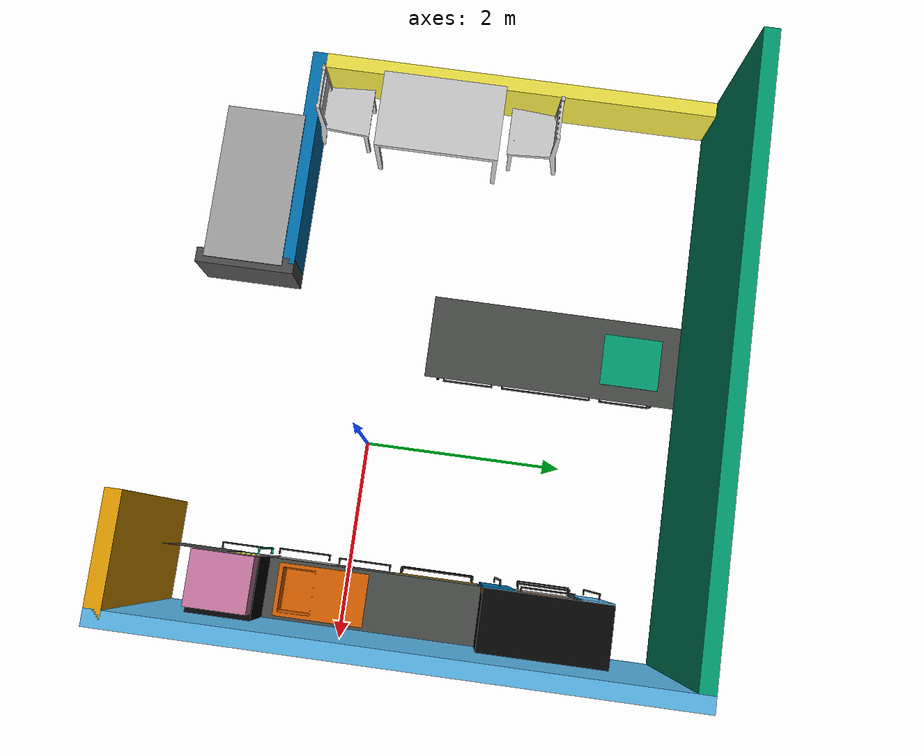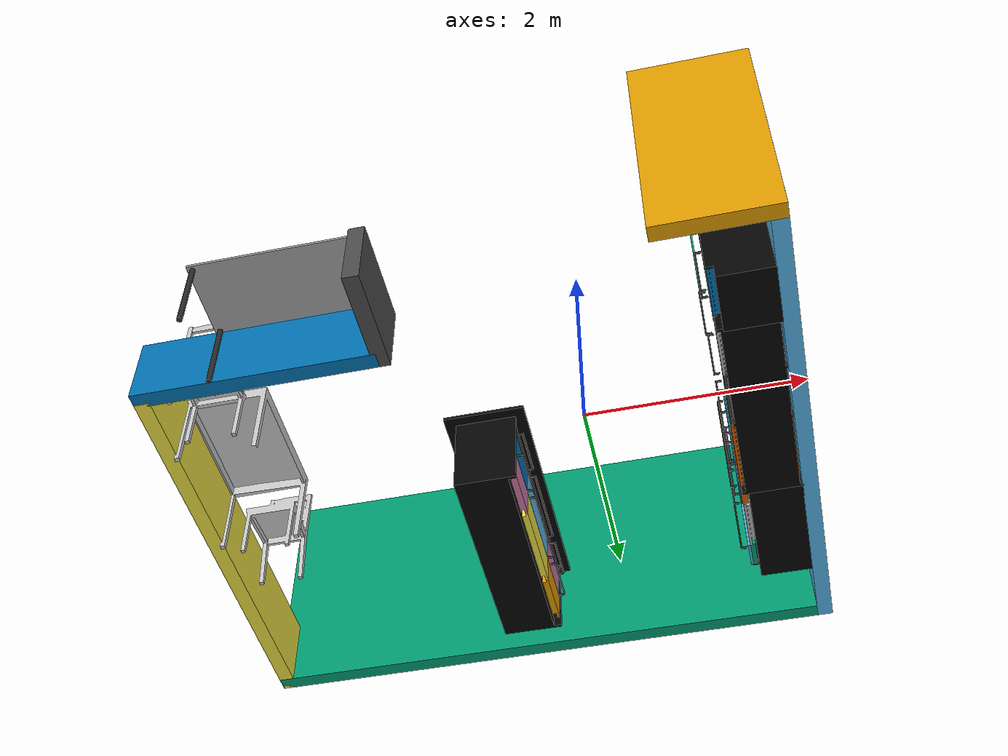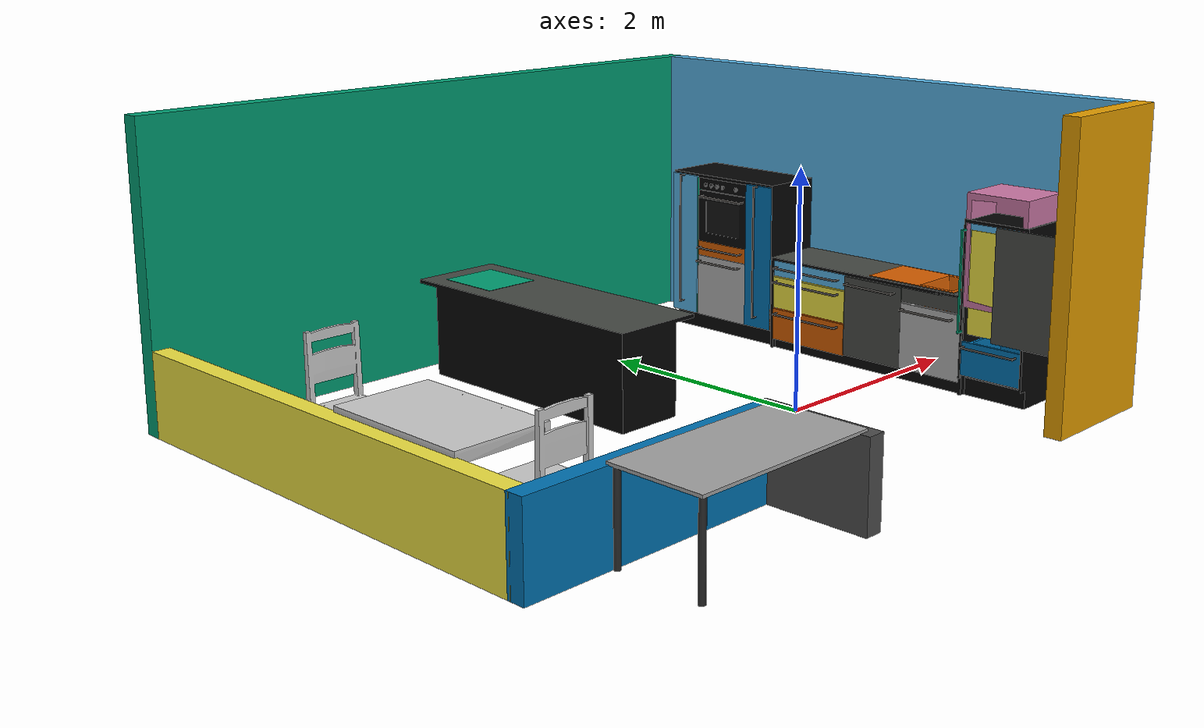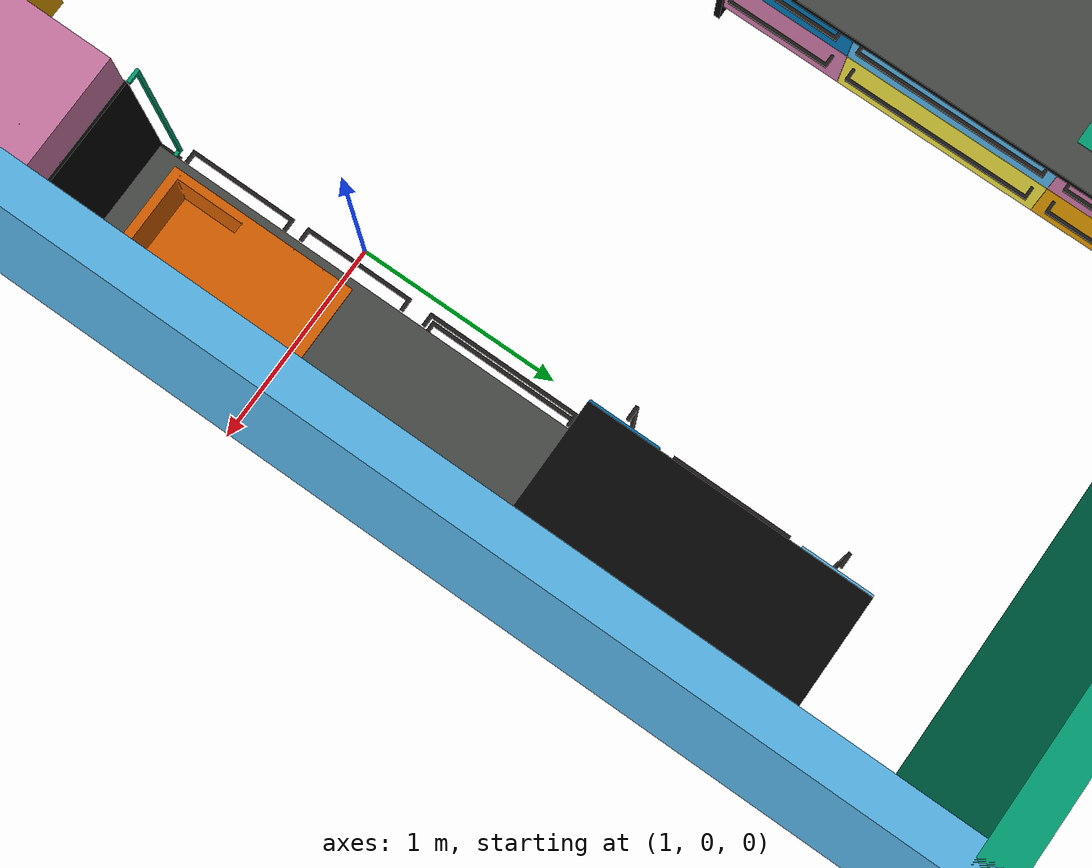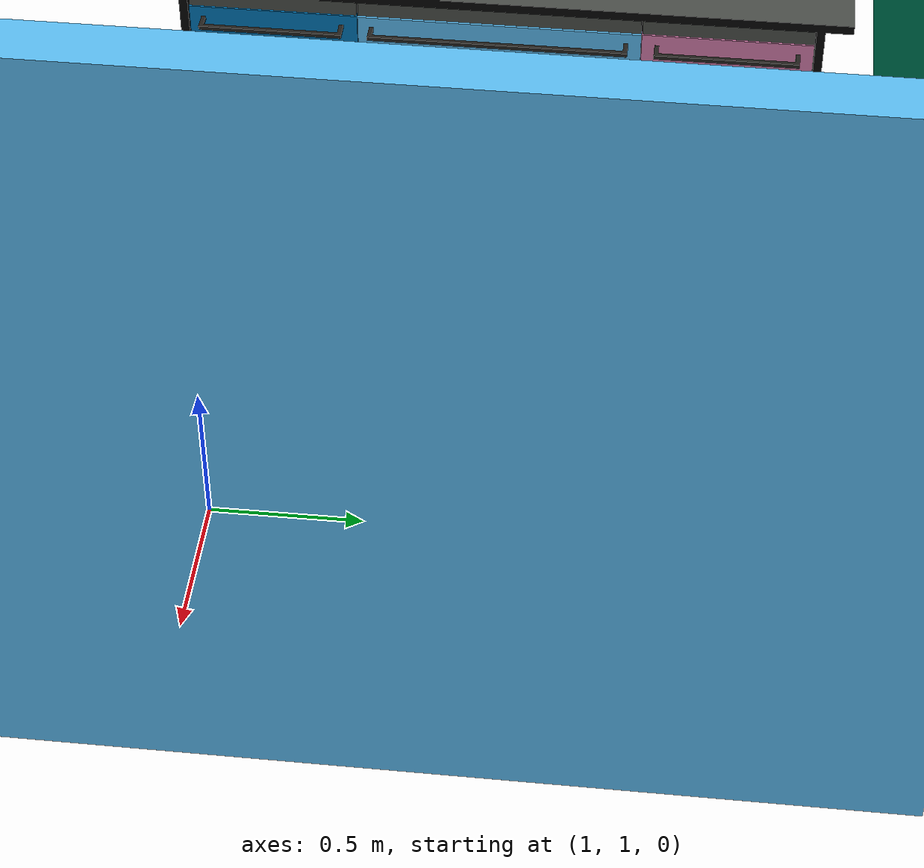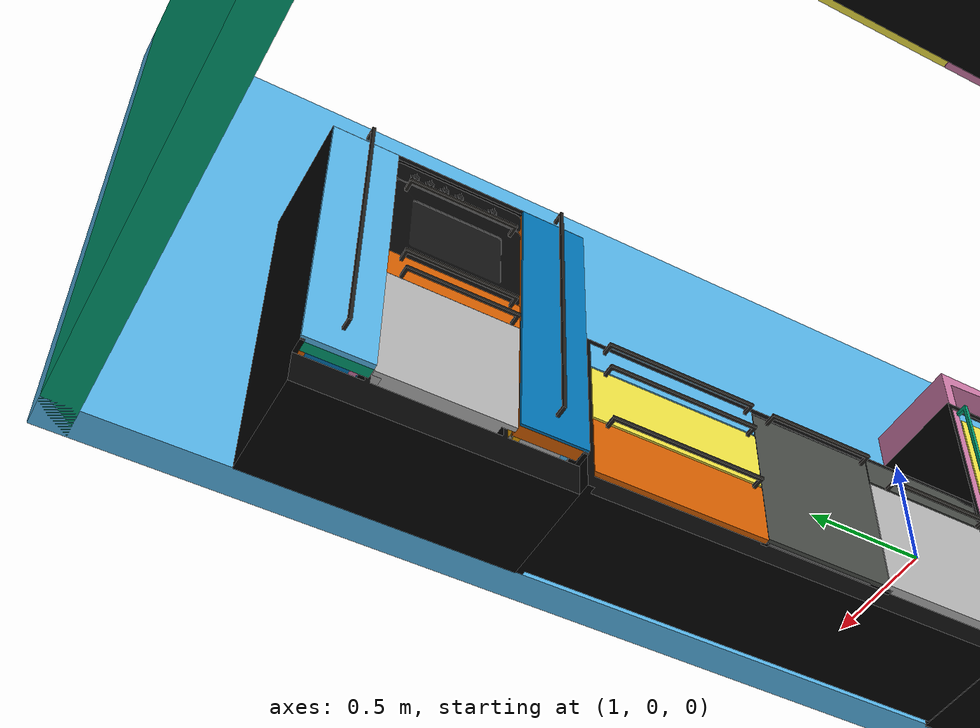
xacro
<?xml version="1.0"?>

<robot name="iai_kitchen" xmlns:xacro="http://ros.org/wiki/xacro">

  <xacro:include filename="$(find iai_kitchen)/urdf_obj/IAI_oven_area.urdf.xacro"/>
  <xacro:include filename="$(find iai_kitchen)/urdf_obj/IAI_kitchen_island.urdf.xacro"/>
  <xacro:include filename="$(find iai_kitchen)/urdf_obj/IAI_sink_area.urdf.xacro"/>
  <xacro:include filename="$(find iai_kitchen)/urdf_obj/IAI_fridge_area.urdf.xacro"/>
  <xacro:include filename="$(find iai_kitchen)/urdf_obj/IAI_tables.urdf.xacro"/>
  <xacro:include filename="$(find iai_kitchen)/urdf_obj/IAI_kitchen_walls.urdf.xacro"/>

  <xacro:property name="pi" value="3.1415926535897931" />
  <xacro:property name="simulated" value="true" />
  <xacro:property name="include_wall_7" value="false"/>
  <xacro:macro name="sphere_inertia" params="radius mass">
    <inertial>
      <origin xyz="0.0 0.0 0.0" rpy="0 0 0"/>
      <mass value="1"/>
      <inertia
          ixx="1" ixy="0.0" ixz="0.0"
          iyy="1" iyz="0.0"
          izz="1"/>
    </inertial>
  </xacro:macro>

  <link name="room_link">
    <xacro:sphere_inertia radius="0" mass="0"/>
  </link>
  <xacro:if value="${simulated}">
    <link name="world"/>
    <joint name="world_room_joint" type="fixed">
      <origin xyz="0.0 0.03 0 " rpy="0 0 0" />
      <parent link="world"/>
      <child link="room_link"/>
    </joint>
  </xacro:if>

  <xacro:iai_sink_area name="sink_area" parent="room_link">
    <origin xyz="1.855 1.3 0" rpy="0 0 ${pi}" />
  </xacro:iai_sink_area>

  <xacro:iai_oven_area name="oven_area" parent="room_link">
    <origin xyz="1.845 2.5 0" rpy="0 0 ${pi}" />
  </xacro:iai_oven_area>

  <xacro:iai_kitchen_island name="kitchen_island" parent="room_link">
    <origin xyz="-1.363 0.59 0" rpy="0 0 0" />
  </xacro:iai_kitchen_island>

  <xacro:iai_fridge_area name="fridge_area" parent="room_link">
    <origin xyz="1.845 -0.73 0" rpy="0 0 ${pi}" />
  </xacro:iai_fridge_area>

  <xacro:iai_table_1 name="table_area" parent="room_link">
    <origin xyz="-2.4 -1.5 0" rpy="0 0 ${pi}" />
  </xacro:iai_table_1>

  <xacro:iai_dining_area name="dining_area" parent="room_link">
    <origin xyz="-3.38 0.28 0" rpy="0 0 ${pi / 2}" />
  </xacro:iai_dining_area>

  <xacro:iai_kitchen_wall_robohow parent="room_link">
    <origin xyz="-0.96 0.65 0" rpy="0.0 0.0 0.0" />
  </xacro:iai_kitchen_wall_robohow>

  <gazebo>
    <static>false</static>
  </gazebo>

</robot>

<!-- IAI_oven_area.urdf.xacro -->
<robot name="iai_oven_area" xmlns:xacro="http://ros.org/wiki/xacro">

  <xacro:property name="pi" value="3.1415926535897931" />

  <!--- FIXME THIS should NOT be here -->
  <xacro:include filename="$(find iai_kitchen)/urdf_obj/IAI_drawers.urdf.xacro"/>
  <xacro:include filename="$(find iai_kitchen)/urdf_obj/IAI_oven.urdf.xacro"/>

  <xacro:macro name="iai_oven_area" params="parent name *origin">
  <link name="${name}_area_footprint">
    <xacro:sphere_inertia radius="0" mass="0"/>
  </link>

  <link name="${name}_area">
    <xacro:sphere_inertia radius="0" mass="0"/>
    <visual>
        <origin xyz="0 0 0" rpy="0 0 0" />
        <geometry>
          <mesh filename="package://iai_kitchen/meshes/racks/OvenArea.dae"/>
        </geometry>
      </visual>
    <collision>
        <origin xyz="0 0 0" rpy="0 0 0" />
        <geometry>
          <mesh filename="package://iai_kitchen/meshes/racks/OvenArea.obj"/>
        </geometry>
      </collision>
  </link>

  <joint name="${name}_footprint_joint" type="fixed">
      <xacro:insert_block name="origin" />
    <child link="${name}_area_footprint"/>
    <parent link="${parent}"/>
  </joint>

  <joint name="${name}_main_joint" type="fixed">
    <origin xyz="0.29 0.6 0.755" rpy="0 0 0" />
    <parent link="${name}_area_footprint"/>
    <child link="${name}_area"/>
  </joint>

  <xacro:iai_oven name="${name}_oven" parent="${name}_area">
    <origin rpy="0 0 0" xyz="0.0 0.0 0.415"/>
  </xacro:iai_oven>

  <xacro:iai_drawer_60_14 name="${name}_area_middle_upper_drawer" parent="${name}_area">
    <origin rpy="0 0 0" xyz="0.0 -0. 0.045 "/>
  </xacro:iai_drawer_60_14>

  <xacro:iai_drawer_60_58 name="${name}_area_middle_lower_drawer" parent="${name}_area">
    <origin rpy="0 0 0" xyz="0.0 -0. -0.315 "/>
  </xacro:iai_drawer_60_58>

  <xacro:iai_vdrawer name="${name}_area_left_drawer" parent="${name}_area">
    <origin rpy="0 0 0" xyz="0.29 -0.45 0.07 "/>
  </xacro:iai_vdrawer>

  <xacro:iai_vdrawer name="${name}_area_right_drawer" parent="${name}_area">
    <origin rpy="0 0 0" xyz="0.29 0.45 0.07"/>
  </xacro:iai_vdrawer>

  </xacro:macro>

</robot>

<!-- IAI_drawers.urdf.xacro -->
<robot name="iai_drawers" xmlns:xacro="http://ros.org/wiki/xacro">

  <xacro:property name="pi" value="3.1415926535897931" />

  <xacro:macro name="iai_drawer_60_14" params="name parent *origin">
    <xacro:iai_drawer_14 name="${name}" parent="${parent}" width="60">
      <xacro:insert_block name="origin" />
    </xacro:iai_drawer_14>
  </xacro:macro>

  <xacro:macro name="iai_drawer_80_14" params="name parent *origin">
    <xacro:iai_drawer_14 name="${name}" parent="${parent}" width="80">
      <xacro:insert_block name="origin" />
    </xacro:iai_drawer_14>
  </xacro:macro>

  <xacro:macro name="iai_drawer_60_29" params="name parent *origin">
    <xacro:iai_drawer_29 name="${name}" parent="${parent}" width="60">
      <xacro:insert_block name="origin" />
    </xacro:iai_drawer_29>
  </xacro:macro>

  <xacro:macro name="iai_drawer_80_29" params="name parent *origin">
    <xacro:iai_drawer_29 name="${name}" parent="${parent}" width="80">
      <xacro:insert_block name="origin" />
    </xacro:iai_drawer_29>
  </xacro:macro>

  <xacro:macro name="iai_drawer_100_29" params="name parent *origin">
    <xacro:iai_drawer_29 name="${name}" parent="${parent}" width="100">
      <xacro:insert_block name="origin" />
    </xacro:iai_drawer_29>
  </xacro:macro>

  <xacro:macro name="iai_drawer_60_58" params="name parent *origin">
    <xacro:iai_drawer_58 name="${name}" parent="${parent}" width="60">
      <xacro:insert_block name="origin" />
    </xacro:iai_drawer_58>
  </xacro:macro>

  <xacro:macro name="iai_drawer_58" params="name parent width *origin">

    <xacro:iai_generic_drawer name="${name}" parent="${parent}" width="${width}" height="58">
      <xacro:insert_block name="origin" />
      <origin xyz="0.37 0 0.25" rpy="0 0 0" />
    </xacro:iai_generic_drawer>
  </xacro:macro>

  <xacro:property name="board_x" value="0.49"/>
  <xacro:property name="board_y" value="0.25"/>
  <xacro:property name="board_z" value="0.036"/>
  <xacro:property name="barrier_z" value="0.1"/>
  <xacro:macro name="iai_vdrawer_board" params="name parent joint_origin_z">
    <link name="${parent}_board_${name}_link">
      <sphere_inertia radius="0" mass="0"/>
      <visual>
        <origin rpy="0 0 0" xyz="0 0 0"/>
        <geometry>
          <box size="${board_x} ${board_y} ${board_z}"/>
        </geometry>
      </visual>
      <collision>
        <origin rpy="0 0 0" xyz="0 0 0"/>
        <geometry>
          <box size="${board_x} ${board_y} ${board_z}"/>
        </geometry>
      </collision>
    </link>

    <joint name="${parent}_board_${name}_joint" type="fixed">
      <origin xyz="${-board_y} 0 ${joint_origin_z}"/>
      <parent link="${parent}_main"/>
      <child link="${parent}_board_${name}_link"/>
    </joint>

    <link name="${parent}_barrier_${name}_right_link">
      <sphere_inertia radius="0" mass="0"/>
      <visual>
        <origin rpy="0 0 0" xyz="0 0 0"/>
        <geometry>
          <box size="${board_x} ${board_z} ${barrier_z}"/>
        </geometry>
      </visual>
      <collision>
        <origin rpy="0 0 0" xyz="0 0 0"/>
        <geometry>
          <box size="${board_x} ${board_z} ${barrier_z}"/>
        </geometry>
      </collision>
    </link>

    <joint name="${parent}_barrier_${name}_right_joint" type="fixed">
      <origin xyz="${-board_y} ${-board_y / 2 + board_z / 2} ${joint_origin_z + barrier_z/2 - board_z/2}"/>
      <parent link="${parent}_main"/>
      <child link="${parent}_barrier_${name}_right_link"/>
    </joint>

    <link name="${parent}_barrier_${name}_left_link">
      <sphere_inertia radius="0" mass="0"/>
      <visual>
        <origin rpy="0 0 0" xyz="0 0 0"/>
        <geometry>
          <box size="${board_x} ${board_z} ${barrier_z}"/>
        </geometry>
      </visual>
      <collision>
        <origin rpy="0 0 0" xyz="0 0 0"/>
        <geometry>
          <box size="${board_x} ${board_z} ${barrier_z}"/>
        </geometry>
      </collision>
    </link>

    <joint name="${parent}_barrier_${name}_left_joint" type="fixed">
      <origin xyz="${-board_y} ${board_y / 2 - board_z / 2} ${joint_origin_z + barrier_z/2 - board_z/2}"/>
      <parent link="${parent}_main"/>
      <child link="${parent}_barrier_${name}_left_link"/>
    </joint>

    <link name="${parent}_barrier_${name}_back_link">
      <sphere_inertia radius="0" mass="0"/>
      <visual>
        <origin rpy="0 0 0" xyz="0 0 0"/>
        <geometry>
          <box size="${board_z} ${board_y} ${barrier_z}"/>
        </geometry>
      </visual>
      <collision>
        <origin rpy="0 0 0" xyz="0 0 0"/>
        <geometry>
          <box size="${board_z} ${board_y} ${barrier_z}"/>
        </geometry>
      </collision>
    </link>

    <joint name="${parent}_barrier_${name}_back_joint" type="fixed">
      <origin xyz="${-board_x / 2 + board_z / 2 - board_y} 0 ${joint_origin_z + barrier_z/2 - board_z/2}"/>
      <parent link="${parent}_main"/>
      <child link="${parent}_barrier_${name}_back_link"/>
    </joint>
  </xacro:macro>

  <xacro:macro name="iai_vdrawer" params="name parent *origin">
    <joint name="${name}_main_joint" type="prismatic">
      <xacro:insert_block name="origin"/>
      <parent link="${parent}"/>
      <child link="${name}_main"/>
      <axis xyz="1. 0. 0.0"/>
      <limit effort="300" lower="0" upper="0.48" velocity="10"/>
    </joint>

    <link name="${name}_main">
      <sphere_inertia radius="0" mass="0"/>
      <visual>
        <origin rpy="0 0 0" xyz="0 0 0"/>
        <geometry>
          <box size="0.025 0.3 1.33"/>
        </geometry>
      </visual>
      <collision>
        <origin rpy="0 0 0" xyz="0 0 0"/>
        <geometry>
          <box size="0.025 0.3 1.33"/>
        </geometry>
      </collision>
    </link>

    <joint name="${name}_main_padding_joint" type="fixed">
      <parent link="${name}_main"/>
      <child link="${name}_main_padding"/>
      <origin rpy="0 0 0" xyz="-0.03 0.0 0.0"/>
    </joint>
    <link name="${name}_main_padding">
      <sphere_inertia radius="0" mass="0"/>
      <visual>
        <origin rpy="0 0 0" xyz="0 0 0"/>
        <geometry>
          <box size="0.06 0.3 1.33"/>
        </geometry>
      </visual>
      <collision>
        <origin rpy="0 0 0" xyz="0 0 0"/>
        <geometry>
          <box size="0.06 0.3 1.33"/>
        </geometry>
      </collision>
    </link>

    <joint name="${name}_handle_joint" type="fixed">
      <origin rpy="${-0.5*pi} 0 0" xyz="0.08 0.0 0.05"/>
      <parent link="${name}_main" />
      <child link="${name}_handle" />
    </joint>

    <link name="${name}_handle">
      <sphere_inertia radius="0" mass="0"/>
      <visual>
        <origin xyz="0 0 0" rpy="${0.5*pi} 0 0" />
        <geometry>
          <mesh filename="package://iai_kitchen/meshes/handles/VHandle130.obj"/>
        </geometry>
      </visual>
      <collision>
        <origin xyz="0 0 0" rpy="${0.5*pi} 0 0" />
        <geometry>
          <mesh filename="package://iai_kitchen/meshes/handles/VHandle130.obj"/>
        </geometry>
      </collision>
    </link>

    <xacro:iai_vdrawer_board name="0" parent="${name}" joint_origin_z="-0.6"/>
    <xacro:iai_vdrawer_board name="1" parent="${name}" joint_origin_z="-0.28"/>
    <xacro:iai_vdrawer_board name="2" parent="${name}" joint_origin_z="0.05"/>
    <xacro:iai_vdrawer_board name="3" parent="${name}" joint_origin_z="0.38"/>
  </xacro:macro>

  <xacro:macro name="iai_drawer_29" params="name parent width *origin">

    <xacro:iai_generic_drawer name="${name}" parent="${parent}" width="${width}" height="29">
      <xacro:insert_block name="origin" />
      <origin xyz="0.3525 0 0.11" rpy="0 0 0" />
    </xacro:iai_generic_drawer>
  </xacro:macro>

  <xacro:macro name="iai_drawer_14" params="name parent width *origin">

    <xacro:iai_generic_drawer name="${name}" parent="${parent}" width="${width}" height="14">
      <xacro:insert_block name="origin" />
      <origin xyz="0.3525 0 0.0175" rpy="0 0 0" />
    </xacro:iai_generic_drawer>
  </xacro:macro>

  <xacro:macro name="iai_generic_drawer" params="name parent width height *origin *handle_origin">
    <link name="${name}_main">
      <sphere_inertia radius="0" mass="0"/>
      <visual>
        <origin xyz="0 0 0" rpy="0 0 0" />
        <geometry>
          <mesh filename="package://iai_kitchen/meshes/drawers/Drawer_${width}_${height}.obj"/>
        </geometry>
      </visual>
      <collision>
        <origin xyz="0 0 0" rpy="0 0 0" />
        <geometry>
          <mesh filename="package://iai_kitchen/meshes/drawers/Drawer_${width}_${height}.obj"/>
        </geometry>
      </collision>
    </link>

    <link name="${name}_handle">
      <sphere_inertia radius="0" mass="0"/>
      <visual>
        <origin xyz="0 0 0" rpy="0 0 0" />
        <geometry>
          <mesh filename="package://iai_kitchen/meshes/handles/Handle${width}.obj"/>
        </geometry>
      </visual>
      <collision>
        <origin xyz="0 0 0" rpy="0 0 0" />
        <geometry>
          <mesh filename="package://iai_kitchen/meshes/handles/Handle${width}.obj"/>
        </geometry>
      </collision>
    </link>

    <joint name="${name}_main_joint" type="prismatic">
      <xacro:insert_block name="origin" />
      <parent link="${parent}"/>
      <child link="${name}_main"/>
      <axis xyz="1. 0. 0.0"/>
      <limit effort="300" lower="0" upper="0.48" velocity="10"/>
    </joint>

    <joint name="${name}_handle_joint" type="fixed">
      <xacro:insert_block name="handle_origin"/>
      <parent link="${name}_main"/>
      <child link="${name}_handle"/>
      <axis xyz="0 0 1"/>
      <limit lower="0" upper="${0.5*pi}" effort="300" velocity="10"/>
    </joint>
  </xacro:macro>

  <xacro:macro name="iai_generic_panel" params="name parent width *origin">
    <link name="${name}">
      <sphere_inertia radius="0" mass="0"/>
      <visual>
        <origin xyz="0 0 0" rpy="0 0 0" />
        <geometry>
          <mesh filename="package://iai_kitchen/meshes/drawers/Panel_${width}.obj"/>
        </geometry>
      </visual>
      <collision>
        <origin xyz="0 0 0" rpy="0 0 0" />
        <geometry>
          <mesh filename="package://iai_kitchen/meshes/drawers/Panel_${width}.obj"/>
        </geometry>
      </collision>
    </link>

    <joint name="${name}_joint" type="fixed">
      <xacro:insert_block name="origin"/>
      <parent link="${parent}"/>
      <child link="${name}"/>
    </joint>
  </xacro:macro>

  <!--- FIXME THIS should NOT be here -->
</robot>

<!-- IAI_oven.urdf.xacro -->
<robot name="iai_oven" xmlns:xacro="http://ros.org/wiki/xacro">

  <xacro:property name="pi" value="3.1415926535897931" />

  <xacro:macro name="iai_oven" params="name parent *origin">
    <!-- LINKS -->

    <link name="${name}_main">

      <xacro:sphere_inertia radius="0" mass="0"/>
      <visual>
        <origin xyz="0 0 0" rpy="0 0 0" />
        <geometry>
          <mesh filename="package://iai_kitchen/meshes/oven/OvenMain.dae"/>
        </geometry>
      </visual>
      <collision>
        <origin xyz="0 0 0" rpy="0 0 0" />
        <geometry>
          <mesh filename="package://iai_kitchen/meshes/oven/OvenMain.obj"/>
        </geometry>
      </collision>
    </link>

    <link name="${name}_door">

      <xacro:sphere_inertia radius="0" mass="0"/>
      <visual>
        <origin xyz="0 0 0" rpy="${0.5*pi} 0 0" />
        <geometry>
          <mesh filename="package://iai_kitchen/meshes/oven/OvenDoor.dae"/>
        </geometry>
      </visual>
      <collision>
        <origin xyz="0 0 0" rpy="${0.5*pi} 0 0" />
        <geometry>
          <mesh filename="package://iai_kitchen/meshes/oven/OvenDoor.obj"/>
        </geometry>
      </collision>
    </link>

    <link name="${name}_door_handle">

      <xacro:sphere_inertia radius="0" mass="0"/>
      <visual>
        <origin xyz="0 0 0" rpy="0 0 0" />
        <geometry>
          <mesh filename="package://iai_kitchen/meshes/handles/Handle60.dae"/>
        </geometry>
      </visual>
      <collision>
        <origin xyz="0 0 0" rpy="0 0 0" />
        <geometry>
          <mesh filename="package://iai_kitchen/meshes/handles/Handle60.obj"/>
        </geometry>
      </collision>
    </link>

    <link name="${name}_panel">

      <xacro:sphere_inertia radius="0" mass="0"/>
      <visual>
        <origin xyz="0 0 0" rpy="0 0 0" />
        <geometry>
          <mesh filename="package://iai_kitchen/meshes/oven/OvenPanel.dae"/>
        </geometry>
      </visual>
      <collision>
        <origin xyz="0 0 0" rpy="0 0 0" />
        <geometry>
          <mesh filename="package://iai_kitchen/meshes/oven/OvenPanel.obj"/>
        </geometry>
      </collision>
    </link>

    <!-- JOINTS -->

    <joint name="${name}_main_joint" type="fixed">
      <xacro:insert_block name="origin" />
      <parent link="${parent}"/>
      <child link="${name}_main"/>
    </joint>
    <xacro:if value="${simulated}">
      <joint name="${name}_door_joint" type="revolute">
        <origin xyz="0.2737 0. -0.2614" rpy="${-0.5*pi} 0 0" />
        <parent link="${name}_main"/>
        <child link="${name}_door"/>
        <axis xyz="0 0 1"/>
        <!-- FIXME make the closed position stable -->
        <limit lower="0" upper="${0.5*pi}" effort="0.03" velocity="10"/>

        <dynamics damping="100.1"/>
      </joint>
      <gazebo reference="${name}_door_joint">
        <kp>1000000000</kp>
        <kd>1000000000</kd>
      </gazebo>
    </xacro:if>
    <xacro:unless value="${simulated}">
      <joint name="${name}_door_joint" type="revolute">
        <origin xyz="0.2737 0. -0.2614" rpy="${-0.5*pi} 0 0" />
        <parent link="${name}_main"/>
        <child link="${name}_door"/>
        <axis xyz="0 0 1"/>

        <limit lower="0" upper="${0.5*pi}" effort="300" velocity="10"/>

      </joint>

    </xacro:unless>
    <joint name="${name}_door_handle_joint" type="fixed">
      <origin xyz="0.05876 -0.39803 0." rpy="${-0.5*pi} 0 0" />
      <parent link="${name}_door"/>
      <child link="${name}_door_handle"/>
      <axis xyz="0 0 1"/>
      <limit lower="0" upper="${0.5*pi}" effort="300" velocity="10"/>
    </joint>

    <joint name="${name}_panel_joint" type="fixed">
      <origin xyz="0.27 0 0.2449" rpy="0 0 0" />
      <parent link="${name}_main"/>
      <child link="${name}_panel"/>
    </joint>

    <!--KNOBS -->

    <xacro:iai_oven_knob name="${name}_knob_stove_2" parent="${name}_panel" xyz="0 -0.14 0"/>
    <xacro:iai_oven_knob name="${name}_knob_stove_1" parent="${name}_panel" xyz="0 -0.21 0"/>
    <xacro:iai_oven_knob name="${name}_knob_stove_3" parent="${name}_panel" xyz="0 -0.07 0"/>
    <xacro:iai_oven_knob name="${name}_knob_stove_4" parent="${name}_panel" xyz="0 -0.0 0"/>
    <xacro:iai_oven_knob name="${name}_knob_oven" parent="${name}_panel" xyz="0 0.16 0"/>

  </xacro:macro>

  <xacro:macro name="iai_oven_knob" params="name parent xyz">
    <link name="${name}">

      <xacro:sphere_inertia radius="0" mass="0"/>
      <visual>
        <origin xyz="0 0 0" rpy="0 ${0.5 * pi} 0" />
        <geometry>
          <mesh filename="package://iai_kitchen/meshes/oven/Knob.dae"/>
        </geometry>
      </visual>
      <collision>
        <origin xyz="0 0 0" rpy="0 ${0.5 * pi} 0" />
        <geometry>
          <mesh filename="package://iai_kitchen/meshes/oven/Knob.obj"/>
        </geometry>
      </collision>
    </link>

    <joint name="${name}_joint" type="revolute">
      <origin xyz="${xyz}" rpy="0 ${-0.5 * pi} 0" />
      <parent link="${parent}"/>
      <child link="${name}"/>
      <axis xyz="0 0 1"/>
      <limit lower="0" upper="${pi}" effort="300" velocity="10"/>
    </joint>

  </xacro:macro>

  <!--- FIXME THIS should NOT be here -->
</robot>

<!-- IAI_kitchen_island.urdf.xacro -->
<robot name="iai_kitchen_island" xmlns:xacro="http://ros.org/wiki/xacro">

  <xacro:property name="pi" value="3.1415926535897931" />

  <!--- FIXME THIS should NOT be here -->
  <xacro:include filename="$(find iai_kitchen)/urdf_obj/IAI_drawers.urdf.xacro"/>

  <xacro:macro name="iai_kitchen_island" params="parent name *origin">

    <link name="${name}_footprint">
      <xacro:sphere_inertia radius="0" mass="0"/>
    </link>
    <link name="${name}">
      <xacro:sphere_inertia radius="0" mass="0"/>
      <visual>
        <origin xyz="0 0 0" rpy="0 0 0" />
        <geometry>
          <mesh filename="package://iai_kitchen/meshes/racks/IslandArea.dae"/>
        </geometry>
      </visual>
      <collision>
        <origin xyz="0 0 0" rpy="0 0 0" />
        <geometry>
          <mesh filename="package://iai_kitchen/meshes/racks/IslandArea.obj"/>
        </geometry>
      </collision>
    </link>

    <joint name="${name}_footprint_joint" type="fixed">
        <xacro:insert_block name="origin" />
      <child link="${name}_footprint"/>
      <parent link="${parent}"/>
    </joint>

    <joint name="${name}_joint" type="fixed">
      <origin xyz="0.2975 1.1292 0.421" rpy="0 0 0" />
      <parent link="${name}_footprint"/>
      <child link="${name}"/>
    </joint>

    <link name="${name}_surface">
      <xacro:sphere_inertia radius="0" mass="0"/>
      <collision>
          <origin xyz="0 0 0" rpy="0 0 0" />
          <geometry>
            <box size="0.8 2.45 0.02"/>
          </geometry>
        </collision>
    </link>

    <joint name="${name}_surface_joint" type="fixed">
      <origin xyz="0.0 0. 0.42" rpy="0 0 0" />
      <parent link="${name}"/>
      <child link="${name}_surface"/>
    </joint>

    <link name="${name}_stove">
      <xacro:sphere_inertia radius="0" mass="0"/>
      <visual>
          <origin xyz="0 0 0" rpy="0 0 0" />
          <geometry>
            <mesh filename="package://iai_kitchen/meshes/misc/Stove.dae"/>
          </geometry>
        </visual>
        <collision>
          <origin xyz="0 0 0" rpy="0 0 0" />
          <geometry>
            <mesh filename="package://iai_kitchen/meshes/misc/Stove.obj"/>
          </geometry>
        </collision>
    </link>

    <joint name="${name}_stove_joint" type="fixed">
      <origin xyz="0.0 0.7658 0.4315" rpy="0 0 0" />
      <parent link="${name}"/>
      <child link="${name}_stove"/>
    </joint>

    <xacro:iai_generic_panel name="${name}_left_panel" parent="${name}" width="60">
      <origin rpy="0 0 0" xyz="0.2725 -0.8 0.329 "/>
    </xacro:iai_generic_panel>
    <xacro:iai_drawer_60_29 name="${name}_left_upper_drawer" parent="${name}">
      <origin rpy="0 0 0" xyz="0.0025 -0.8 0.114 "/>
    </xacro:iai_drawer_60_29>
    <xacro:iai_drawer_60_29 name="${name}_left_lower_drawer" parent="${name}">
      <origin rpy="0 0 0" xyz="0.0025 -0.8 -0.176 "/>
    </xacro:iai_drawer_60_29>

    <xacro:iai_generic_panel name="${name}_middle_panel" parent="${name}" width="100">
      <origin rpy="0 0 0" xyz="0.2725 0 0.329 "/>
    </xacro:iai_generic_panel>
    <xacro:iai_drawer_100_29 name="${name}_middle_upper_drawer" parent="${name}">
      <origin rpy="0 0 0" xyz="0.0025 0 0.114 "/>
    </xacro:iai_drawer_100_29>
    <xacro:iai_drawer_100_29 name="${name}_middle_lower_drawer" parent="${name}">
      <origin rpy="0 0 0" xyz="0.0025 0 -0.176 "/>
    </xacro:iai_drawer_100_29>

    <xacro:iai_generic_panel name="${name}_right_panel" parent="${name}" width="60">
      <origin rpy="0 0 0" xyz="0.2725 0.8 0.329 "/>
    </xacro:iai_generic_panel>
    <xacro:iai_drawer_60_29 name="${name}_right_upper_drawer" parent="${name}">
      <origin rpy="0 0 0" xyz="0.0025 0.8 0.114 "/>
    </xacro:iai_drawer_60_29>
    <xacro:iai_drawer_60_29 name="${name}_right_lower_drawer" parent="${name}">
      <origin rpy="0 0 0" xyz="0.0025 0.8 -0.176 "/>
    </xacro:iai_drawer_60_29>
  </xacro:macro>
</robot>

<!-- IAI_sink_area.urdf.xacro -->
<robot name="iai_sink_area" xmlns:xacro="http://ros.org/wiki/xacro">

  <xacro:property name="pi" value="3.1415926535897931" />

  <!--- FIXME THIS should NOT be here -->
  <xacro:include filename="$(find iai_kitchen)/urdf_obj/IAI_drawers.urdf.xacro"/>
  <xacro:include filename="$(find iai_kitchen)/urdf_obj/IAI_dish_washer.urdf.xacro"/>

  <xacro:macro name="iai_sink_area" params="parent name *origin">
  <link name="${name}_footprint">
    <xacro:sphere_inertia radius="0" mass="0"/>
  </link>

  <link name="${name}">
    <xacro:sphere_inertia radius="0" mass="0"/>
    <visual>
        <origin xyz="0 0 0" rpy="0 0 0" />
        <geometry>
          <mesh filename="package://iai_kitchen/meshes/racks/SinkArea.dae"/>
        </geometry>
      </visual>
    <collision>
        <origin xyz="0 0 0" rpy="0 0 0" />
        <geometry>
          <mesh filename="package://iai_kitchen/meshes/racks/SinkArea.obj"/>
        </geometry>
      </collision>
  </link>

  <joint name="${name}_footprint_joint" type="fixed">
      <xacro:insert_block name="origin" />
    <child link="${name}_footprint"/>
    <parent link="${parent}"/>
  </joint>

  <joint name="${name}_main_joint" type="fixed">
    <origin xyz="0.29 1.03 0.41" rpy="0 0 0" />
    <parent link="${name}_footprint"/>
    <child link="${name}"/>
  </joint>

  <link name="${name}_surface">
    <xacro:sphere_inertia radius="0" mass="0"/>
    <collision>
      <origin xyz="0 -0.225 0" rpy="0 0 0" />
      <geometry>
        <box size="0.575 1.6 0.02"/>
      </geometry>
    </collision>
  </link>

 <joint name="${name}_surface_joint" type="fixed">
    <origin xyz="0.0 0. 0.43" rpy="0 0 0" />
    <parent link="${name}"/>
    <child link="${name}_surface"/>
 </joint>

  <link name="${name}_sink">
    <xacro:sphere_inertia radius="0" mass="0"/>
    <visual>
      <origin xyz="0 0 0" rpy="0 0 0" />
      <geometry>
        <mesh filename="package://iai_kitchen/meshes/misc/Sink.dae"/>
      </geometry>
    </visual>
    <collision>
      <origin xyz="0 0 0" rpy="0 0 0" />
      <geometry>
        <mesh filename="package://iai_kitchen/meshes/misc/Sink.obj"/>
      </geometry>
    </collision>
  </link>

  <joint name="${name}_sink_joint" type="fixed">
    <origin xyz="0.005 0.47 0.4414" rpy="0 0 0" />
    <parent link="${name}"/>
    <child link="${name}_sink"/>
  </joint>

  <xacro:iai_generic_panel name="${name}_right_panel" parent="${name}" width="60">
    <origin rpy="0 0 0" xyz="0.28 0.7 0.355 "/>
  </xacro:iai_generic_panel>
  <xacro:iai_drawer_60_58 name="${name}_trash_drawer" parent="${name}">
    <origin rpy="0 0 0" xyz="0.01 0.7 -0.015 "/>
  </xacro:iai_drawer_60_58>
  <xacro:iai_drawer_80_14 name="${name}_left_upper_drawer" parent="${name}">
    <origin rpy="0 0 0" xyz="0.01 -0.6 0.345 "/>
  </xacro:iai_drawer_80_14>
  <xacro:iai_drawer_80_29 name="${name}_left_middle_drawer" parent="${name}">
    <origin rpy="0 0 0" xyz="0.01 -0.6 0.12 "/>
  </xacro:iai_drawer_80_29>
  <xacro:iai_drawer_80_29 name="${name}_left_bottom_drawer" parent="${name}">
    <origin rpy="0 0 0" xyz="0.01 -0.6 -0.18" />
  </xacro:iai_drawer_80_29>
  <xacro:iai_dish_washer name="${name}_dish_washer" parent="${name}">
    <origin rpy="0 0 0" xyz="0.01 0.1 0.06" />
  </xacro:iai_dish_washer>
  </xacro:macro>

</robot>

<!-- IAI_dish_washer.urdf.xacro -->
<robot name="iai_dish_washer" xmlns:xacro="http://ros.org/wiki/xacro">

  <xacro:property name="pi" value="3.1415926535897931" />

  <xacro:macro name="iai_dish_washer" params="name parent *origin">
     <link name="${name}_main">

      <xacro:sphere_inertia radius="0" mass="0"/>
      <visual>
        <origin xyz="0 0 0" rpy="0 0 0" />
        <geometry>
          <mesh filename="package://iai_kitchen/meshes/misc/DishWasher.dae"/>
        </geometry>
      </visual>
      <collision>
        <origin xyz="0 0 0" rpy="0 0 0" />
        <geometry>
          <mesh filename="package://iai_kitchen/meshes/misc/DishWasher.obj"/>
        </geometry>
      </collision>
    </link>

    <link name="${name}_door">

      <xacro:sphere_inertia radius="0" mass="0"/>
      <visual>
        <origin xyz="0 0.055 0" rpy="${0.5*pi} 0 0" />
        <geometry>
          <mesh filename="package://iai_kitchen/meshes/misc/DishWasherDoor.dae"/>
        </geometry>
      </visual>
      <collision>
        <origin xyz="0 0.055 0" rpy="${0.5*pi} 0 0" />
        <geometry>
          <mesh filename="package://iai_kitchen/meshes/misc/DishWasherDoor.obj"/>
        </geometry>
      </collision>
    </link>

    <link name="${name}_door_handle">
      <xacro:sphere_inertia radius="0" mass="0"/>
      <visual>
        <origin xyz="0 0 0" rpy="0 0 0" />
        <geometry>
          <mesh filename="package://iai_kitchen/meshes/handles/Handle60.dae"/>
        </geometry>
      </visual>
      <collision>
        <origin xyz="0 0 0" rpy="0 0 0" />
        <geometry>
          <mesh filename="package://iai_kitchen/meshes/handles/Handle60.obj"/>
        </geometry>
      </collision>
    </link>
    <joint name="${name}_main_joint" type="fixed">
      <xacro:insert_block name="origin" />
      <parent link="${parent}"/>
      <child link="${name}_main"/>
    </joint>

    <joint name="${name}_door_joint" type="revolute">
      <origin xyz="0.27 0. -0.285" rpy="${-0.5*pi} 0 0" />
      <parent link="${name}_main"/>
      <child link="${name}_door"/>
      <axis xyz="0 0 1"/>
      <limit lower="0" upper="${0.5*pi}" effort="300" velocity="10"/>
    </joint>
    <joint name="${name}_door_handle_joint" type="fixed">
      <origin xyz="0.085 -0.575 0.0" rpy="${-0.5*pi} 0 0" />
      <parent link="${name}_door"/>
      <child link="${name}_door_handle"/>
    </joint>

    <xacro:dishwasher_tray name="${name}_tray" parent="${name}_main">
      <origin xyz="-0.08 0 0.15"/>
    </xacro:dishwasher_tray>

  </xacro:macro>

  <xacro:macro name="dishwasher_tray" params="name parent *origin">

    <joint name="${name}_main" type="prismatic">
      <xacro:insert_block name="origin"/>
      <parent link="${parent}"/>
      <child link="${name}_bottom"/>
      <axis xyz="1 0 0"/>
      <limit lower="0" upper="0.48" effort="300" velocity="10"/>
    </joint>

    <link name="${name}_bottom">
      <visual>
        <geometry>
          <box size="0.32 0.5 0.05"/>
        </geometry>
      </visual>
      <collision>
        <geometry>
          <box size="0.32 0.5 0.05"/>
        </geometry>
      </collision>
    </link>

    <link name="${name}_left_side">
      <visual>
        <geometry>
          <box size="0.32 0.005 0.17"/>
        </geometry>
      </visual>
      <collision>
        <geometry>
          <box size="0.32 0.005 0.17"/>
        </geometry>
      </collision>
    </link>

    <link name="${name}_right_side">
      <visual>
        <geometry>
          <box size="0.32 0.005 0.17"/>
        </geometry>
      </visual>
      <collision>
        <geometry>
          <box size="0.32 0.005 0.17"/>
        </geometry>
      </collision>
    </link>

    <link name="${name}_back_side">
      <visual>
        <geometry>
          <box size="0.005 0.5 0.17"/>
        </geometry>
      </visual>
      <collision>
        <geometry>
          <box size="0.005 0.5 0.17"/>
        </geometry>
      </collision>
    </link>

    <link name="${name}_front_side">
      <visual>
        <geometry>
          <box size="0.005 0.5 0.17"/>
        </geometry>
      </visual>
      <collision>
        <geometry>
          <box size="0.005 0.5 0.17"/>
        </geometry>
      </collision>
    </link>

    <joint name="${name}_bottom_left" type="fixed">
      <origin xyz="-0.0 -0.25 0.075"/>
      <child link="${name}_left_side" />
      <parent link="${name}_bottom"/>
    </joint>

    <joint name="${name}_bottom_right" type="fixed">
      <origin xyz="-0.0 0.25 0.075"/>
      <child link="${name}_right_side" />
      <parent link="${name}_bottom"/>
    </joint>

    <joint name="${name}_bottom_back" type="fixed">
      <origin xyz="-0.16 0 0.075"/>
      <child link="${name}_back_side" />
      <parent link="${name}_bottom"/>
    </joint>

    <joint name="${name}_bottom_front" type="fixed">
      <origin xyz="0.16 0 0.075"/>
      <child link="${name}_front_side" />
      <parent link="${name}_bottom"/>
    </joint>

    <xacro:tray_handle name="${name}_handle" parent="${name}_front_side">
      <origin xyz="0.06 -0.1 -0.02"/>
    </xacro:tray_handle>

  </xacro:macro>

  <xacro:macro name="tray_handle" params="name parent *origin">

    <joint name="${name}_joint" type="fixed">
      <xacro:insert_block name="origin"/>
      <child link="${name}_front_side" />
      <parent link="${parent}"/>
    </joint>

    <link name="${name}_left_side">
      <visual>
        <geometry>
          <box size="0.03 0.01 0.01"/>
        </geometry>
      </visual>
      <collision>
        <geometry>
          <box size="0.03 0.01 0.01"/>
        </geometry>
      </collision>
    </link>

    <link name="${name}_right_side">
      <visual>
        <geometry>
          <box size="0.03 0.01 0.01"/>
        </geometry>
      </visual>
      <collision>
        <geometry>
          <box size="0.03 0.01 0.01"/>
        </geometry>
      </collision>
    </link>

    <link name="${name}_front_side">
      <visual>
        <geometry>
          <box size="0.01 0.2 0.01"/>
        </geometry>
      </visual>
      <collision>
        <geometry>
          <box size="0.01 0.2 0.01"/>
        </geometry>
      </collision>
    </link>

    <joint name="${name}_front_left_joint" type="fixed">
      <origin xyz="-0.01 -0.1 0"/>
      <child link="${name}_left_side" />
      <parent link="${name}_front_side"/>
    </joint>

    <joint name="${name}_front_right_joint" type="fixed">
      <origin xyz="-0.01 0.1 0"/>
      <child link="${name}_right_side" />
      <parent link="${name}_front_side"/>
    </joint>

  </xacro:macro>

</robot>

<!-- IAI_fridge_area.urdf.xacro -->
<robot name="iai_fridge_area" xmlns:xacro="http://ros.org/wiki/xacro">

  <xacro:property name="pi" value="3.1415926535897931" />

  <xacro:include filename="$(find iai_kitchen)/urdf_obj/IAI_drawers.urdf.xacro"/>
  <xacro:include filename="$(find iai_kitchen)/urdf_obj/IAI_fridge.urdf.xacro"/>

  <xacro:macro name="iai_fridge_area" params="parent name *origin">
    <link name="${name}_footprint">
      <xacro:sphere_inertia radius="0" mass="0"/>
    </link>

    <link name="${name}">
      <xacro:sphere_inertia radius="0" mass="0"/>
      <visual>
    	  <origin xyz="0 0 0.01" rpy="0 0 0" />
    	  <geometry>
    	    <mesh filename="package://iai_kitchen/meshes/racks/FridgeArea.dae"/>
    	  </geometry>
    	</visual>
      <collision>
          <origin xyz="0 0 0.01" rpy="0 0 0" />
          <geometry>
  	    <mesh filename="package://iai_kitchen/meshes/racks/FridgeArea.obj"/>
            <!--mesh filename="package://iai_kitchen/meshes/collision/kitchen_fridge.stl"/-->
          </geometry>
        </collision>
    </link>

    <joint name="${name}_footprint_joint" type="fixed">
	<xacro:insert_block name="origin" />
      <child link="${name}_footprint"/>
      <parent link="${parent}"/>
    </joint>

    <joint name="${name}_main_joint" type="fixed">
      <origin xyz="0.29 0.3 0.74" rpy="0 0 0" />
      <parent link="${name}_footprint"/>
      <child link="${name}"/>
    </joint>
  <xacro:iai_drawer_60_29 name="${name}_lower_drawer" parent="${name}">
    <origin rpy="0 0 0" xyz="0.0 -0.0 -0.4175 "/>
  </xacro:iai_drawer_60_29>

  <xacro:iai_fridge name="iai_fridge" parent="${name}">
    <origin xyz="0 0 0.25" rpy="0 0 0" />
  </xacro:iai_fridge>
  </xacro:macro>

</robot>

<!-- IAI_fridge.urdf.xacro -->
<robot name="iai_fridge" xmlns:xacro="http://ros.org/wiki/xacro">

  <xacro:property name="pi" value="3.1415926535897931" />

  <xacro:macro name="iai_fridge" params="name parent *origin">

     <link name="${name}_main">

      <sphere_inertia radius="0" mass="0"/>
      <visual>
        <origin xyz="0 0 0" rpy="0 0 0" />
        <geometry>
          <mesh filename="package://iai_kitchen/meshes/misc/Fridge.obj"/>
        </geometry>
      </visual>
      <collision>
        <origin xyz="0 0 0" rpy="0 0 0" />
        <geometry>
          <mesh filename="package://iai_kitchen/meshes/misc/Fridge.obj"/>
        </geometry>
      </collision>
    </link>

    <link name="${name}_main_middle_level">

      <visual>
        <origin xyz="0 0 0" rpy="0 0 0" />
        <geometry>
          <box size="0.29 0.50 0.01"/>
        </geometry>
      </visual>
      <collision>
        <origin xyz="0 0 0" rpy="0 0 0" />
        <geometry>
          <box size="0.29 0.50 0.01"/>
        </geometry>
      </collision>
    </link>

    <link name="${name}_door">

      <sphere_inertia radius="0" mass="0"/>
      <visual>
        <origin xyz="0 0 0" rpy="0 0 0" />
        <geometry>
          <mesh filename="package://iai_kitchen/meshes/misc/FridgeDoor.obj"/>
        </geometry>
      </visual>
      <collision>
        <origin xyz="0 0 0" rpy="0 0 0" />
        <geometry>
          <mesh filename="package://iai_kitchen/meshes/misc/FridgeDoor.obj"/>
        </geometry>
      </collision>
  </link>

  <link name="${name}_ceiling">
        <visual>
            <geometry>
                <box size="0.56 0.5 0.13"/>
            </geometry>
        </visual>
        <collision>
            <geometry>
                <box size="0.56 0.5 0.13"/>
            </geometry>
        </collision>
  </link>

    <link name="${name}_door_handle">

      <sphere_inertia radius="0" mass="0"/>
      <visual>
        <origin xyz="0 0 0" rpy="0 0 0" />
        <geometry>
          <mesh filename="package://iai_kitchen/meshes/handles/VHandle90.obj"/>
        </geometry>
      </visual>
      <collision>
        <origin xyz="0 0 0" rpy="0 0 0" />
        <geometry>
          <mesh filename="package://iai_kitchen/meshes/handles/VHandle90.obj"/>
        </geometry>
      </collision>
    </link>

    <joint name="${name}_main_joint" type="fixed">
      <xacro:insert_block name="origin" />
      <parent link="${parent}"/>
      <child link="${name}_main"/>
    </joint>

    <joint name="${name}_main_middle_level_joint" type="fixed">
      <parent link="${name}_main"/>
      <child link="${name}_main_middle_level"/>
      <origin xyz="-0.01 0 0.01" rpy="0 0 0" />
    </joint>

    <joint name="${name}_door_joint" type="revolute">
      <origin xyz="0.29 0.3 0" rpy="0 0 0" />
      <parent link="${name}_main"/>
      <child link="${name}_door"/>
      <axis xyz="0 0 1"/>
      <limit lower="0" upper="${0.5*pi}" effort="300" velocity="10"/>
    </joint>

    <joint name="${name}_ceiling_joint" type="fixed">
        <origin xyz="0.0 0.0 0.44"/>
        <parent link="${name}_main"/>
        <child link="${name}_ceiling"/>
    </joint>

    <joint name="${name}_door_handle_joint" type="fixed">
      <origin xyz="0.07 -0.57 0." rpy="0 0 0" />
      <parent link="${name}_door"/>
      <child link="${name}_door_handle"/>
    </joint>

    <link name="${name}_door_block" >
      <visual>
        <geometry>
          <box size="0.04 0.523 0.88"/>
        </geometry>
      </visual>
      <collision>
        <geometry>
          <box size="0.04 0.523 0.88"/>
        </geometry>
      </collision>
    </link>

    <link name="${name}_door_block_right_bar" >
      <visual>
        <geometry>
          <box size="0.06 0.015 0.73"/>
        </geometry>
      </visual>
      <collision>
        <geometry>
          <box size="0.06 0.015 0.73"/>
        </geometry>
      </collision>
    </link>

    <link name="${name}_door_block_left_bar" >
      <visual>
        <geometry>
          <box size="0.06 0.015 0.73"/>
        </geometry>
      </visual>
      <collision>
        <geometry>
          <box size="0.06 0.015 0.73"/>
        </geometry>
      </collision>
    </link>

    <link name="${name}_door_block_top_bar" >
      <visual>
        <geometry>
          <box size="0.045 0.46 0.01"/>
        </geometry>
      </visual>
      <collision>
        <geometry>
          <box size="0.045 0.46 0.01"/>
        </geometry>
      </collision>
    </link>

    <joint name="${name}_door_block_joint" type="fixed">
      <origin xyz="-0.025 -0.27 -0.01" />
      <parent link="${name}_door"/>
      <child link="${name}_door_block"/>
    </joint>

    <joint name="${name}_door_block_right_bar_joint" type="fixed">
      <origin xyz="-0.0425 -0.2225 0.01" />
      <parent link="${name}_door_block"/>
      <child link="${name}_door_block_right_bar"/>
    </joint>

    <joint name="${name}_door_block_left_bar_joint" type="fixed">
      <origin xyz="-0.0425 0.2225 0.01" />
      <parent link="${name}_door_block"/>
      <child link="${name}_door_block_left_bar"/>
    </joint>

    <joint name="${name}_door_block_top_bar_joint" type="fixed">
      <origin xyz="-0.03 0 0.37" />
      <parent link="${name}_door_block"/>
      <child link="${name}_door_block_top_bar"/>
    </joint>

    <xacro:fridge_door_shelf name="${name}_door_shelf1" parent="${name}_door_block" height="0.1">
      <origin xyz="-0.07 0 -0.3525 "/>
    </xacro:fridge_door_shelf>

    <xacro:fridge_door_shelf name="${name}_door_shelf2" parent="${name}_door_block" height="0.065">
      <origin xyz="-0.07 0 0.02"/>
    </xacro:fridge_door_shelf>

    <xacro:fridge_door_shelf name="${name}_door_shelf3" parent="${name}_door_block" height="0.065">
      <origin xyz="-0.07 0 0.23"/>
    </xacro:fridge_door_shelf>

  </xacro:macro>

  <xacro:macro name="fridge_door_shelf" params="name parent height *origin">

    <joint name="${name}_to_door" type="fixed">
      <xacro:insert_block name="origin"/>
      <child link="${name}_bottom"/>
      <parent link="${parent}"/>
    </joint>

    <link name="${name}_bottom" >
      <visual>
        <geometry>
          <box size="0.1 0.35 0.01"/>
        </geometry>
      </visual>
      <collision>
        <geometry>
          <box size="0.1 0.35 0.01"/>
        </geometry>
      </collision>
    </link>

    <link name="${name}_left_side" >
      <visual>
        <geometry>
          <box size="0.115 0.06 ${height}"/>
        </geometry>
      </visual>
      <collision>
        <geometry>
          <box size="0.115 0.06 ${height}"/>
        </geometry>
      </collision>
    </link>

    <link name="${name}_right_side" >
      <visual>
        <geometry>
          <box size="0.115 0.06 ${height}"/>
        </geometry>
      </visual>
      <collision>
        <geometry>
          <box size="0.115 0.06 ${height}"/>
        </geometry>
      </collision>
    </link>

    <link name="${name}_front_side" >
      <visual>
        <geometry>
          <box size="0.02 0.35 ${height}"/>
        </geometry>
      </visual>
      <collision>
        <geometry>
          <box size="0.01 0.35 ${height}"/>
        </geometry>
      </collision>
    </link>

    <joint name="${name}_left_to_bottom" type="fixed">
      <origin xyz="-0.0025 -0.2 ${ height/2 - 0.005}"/>
      <parent link="${name}_bottom"/>
      <child link="${name}_left_side"/>
    </joint>

    <joint name="${name}_right_to_bottom" type="fixed">
      <origin xyz="-0.0025 0.2 ${ height/2 - 0.005}"/>
      <parent link="${name}_bottom"/>
      <child link="${name}_right_side"/>
    </joint>

    <joint name="${name}_front_to_bottom" type="fixed">
      <origin xyz="-0.05 0 ${ height/2 - 0.005}"/>
      <parent link="${name}_bottom"/>
      <child link="${name}_front_side"/>
    </joint>

  </xacro:macro>

</robot>

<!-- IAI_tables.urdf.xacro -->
<robot name="iai_table" xmlns:xacro="http://ros.org/wiki/xacro">
  <xacro:macro name="iai_table_1" params="name parent *origin">
    <link name="${name}_main">
      <xacro:sphere_inertia radius="0" mass="0"/>
      <visual>
        <origin xyz="0 0 0.3619" rpy="0 0 0"/>
        <geometry>
          <mesh filename="package://iai_kitchen/meshes/misc/big_table_1.dae"/>
        </geometry>
      </visual>
      <collision>
        <origin xyz="0 0 0.3619" rpy="0 0 0"/>
        <geometry>
          <mesh filename="package://iai_kitchen/meshes/misc/big_table_1.obj"/>
        </geometry>
      </collision>
    </link>
    <joint name="${name}_main_joint" type="fixed">
      <xacro:insert_block name="origin"/>
      <parent link="${parent}"/>
      <child link="${name}_main"/>
    </joint>
  </xacro:macro>

  <xacro:macro name="jokkmokk_table" params="name parent *origin">
    <link name="${name}_main">
      <xacro:sphere_inertia radius="0" mass="0"/>
      <visual>
        <origin xyz="0.0 0.0 0.0" rpy="0 0 0" />
        <geometry>
          <mesh filename="package://iai_kitchen/meshes/jokkmokk/JokkmokkTable.dae"/>
        </geometry>
      </visual>
      <collision>
        <origin xyz="0.0 0.0 0.0" rpy="0 0 0" />
        <geometry>
          <mesh filename="package://iai_kitchen/meshes/jokkmokk/JokkmokkTable.obj"/>
        </geometry>
      </collision>
    </link>
    <joint name="${name}_main_joint" type="fixed">
      <xacro:insert_block name="origin"/>
      <parent link="${parent}"/>
      <child link="${name}_main"/>
      <origin xyz="0.0 0.0 0.0" rpy="0 0 0" />
    </joint>
  </xacro:macro>

  <xacro:macro name="jokkmokk_chair" params="name parent *origin">
    <link name="${name}_main">
      <xacro:sphere_inertia radius="0" mass="0"/>
      <visual>
        <origin xyz="0.0 0.0 0.0" rpy="0 0 0" />
        <geometry>
          <mesh filename="package://iai_kitchen/meshes/jokkmokk/JokkmokkChair.dae"/>
        </geometry>
      </visual>
      <collision>
        <origin xyz="0.0 0.0 0.0" rpy="0 0 0" />
        <geometry>
          <mesh filename="package://iai_kitchen/meshes/jokkmokk/JokkmokkChair.obj"/>
        </geometry>
      </collision>
    </link>
    <joint name="${name}_main_joint" type="fixed">
      <xacro:insert_block name="origin"/>
      <parent link="${parent}"/>
      <child link="${name}_main"/>
    </joint>
  </xacro:macro>

  <xacro:macro name="iai_dining_area" params="parent name *origin">
    <link name="${name}_footprint">
      <xacro:sphere_inertia radius="0" mass="0"/>
    </link>
    <joint name="${name}_footprint_joint" type="fixed">
      <xacro:insert_block name="origin" />
      <child link="${name}_footprint"/>
      <parent link="${parent}"/>
    </joint>
    <xacro:jokkmokk_table name="${name}_jokkmokk_table" parent="${name}_footprint">
      <origin xyz="0 0 0.35" rpy="0 0 0" />
    </xacro:jokkmokk_table>
    <xacro:jokkmokk_chair name="${name}_jokkmokk_left_chair" parent="${name}_footprint">
      <origin xyz="-1 0 0.5535" rpy="0 0 0" />
    </xacro:jokkmokk_chair>
    <xacro:jokkmokk_chair name="${name}_jokkmokk_right_chair" parent="${name}_footprint">
      <origin xyz="1 0 0.5535" rpy="0 0 ${-pi}" />
    </xacro:jokkmokk_chair>
  </xacro:macro>
</robot>

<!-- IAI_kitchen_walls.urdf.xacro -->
<robot name="iai_kitchen_wall_robohow" xmlns:xacro="http://ros.org/wiki/xacro">

  <xacro:macro name="iai_kitchen_wall_robohow" params="parent *origin include_wall_7:=true">
    <!-- LINKS -->

    <link name="kitchen_wall_1">
      <xacro:sphere_inertia radius="0" mass="0"/>
      <visual>
        <origin xyz="0 0 1.25" rpy="0 0 0" />
        <geometry>
            <box size="1.1376 0.15 2.5" />
        </geometry>
     </visual>
      <collision>
        <origin xyz="0 0 1.25" rpy="0 0 0" />
        <geometry>
            <box size="1.1376 0.15 2.5" />
        </geometry>
      </collision>
    </link>

    <link name="kitchen_wall_2">
      <xacro:sphere_inertia radius="0" mass="0"/>
      <visual>
        <origin xyz="0 0 1.25" rpy="0 0 0" />
        <geometry>
            <box size="5.182 0.15 2.5" />
        </geometry>
     </visual>
      <collision>
        <origin xyz="0 0 1.25" rpy="0 0 0" />
        <geometry>
            <box size="5.182 0.15 2.5" />
        </geometry>
      </collision>
    </link>

    <link name="kitchen_wall_3">
      <xacro:sphere_inertia radius="0" mass="0"/>
      <visual>
        <origin xyz="0 0 1.25" rpy="0 0 0" />
        <geometry>
            <box size="5.901 0.15 2.5" />
        </geometry>
     </visual>
      <collision>
        <origin xyz="0 0 1.25" rpy="0 0 0" />
        <geometry>
            <box size="5.901 0.15 2.5" />
        </geometry>
      </collision>
    </link>

    <link name="kitchen_wall_4">
      <xacro:sphere_inertia radius="0" mass="0"/>
      <visual>
        <origin xyz="0 0 0.35" rpy="0 0 0" />
        <geometry>
            <box size="4.25 0.15 0.7" />
        </geometry>
     </visual>
      <collision>
        <origin xyz="0 0 0.35" rpy="0 0 0" />
        <geometry>
            <box size="4.25 0.15 0.7" />
        </geometry>
      </collision>
    </link>

    <link name="kitchen_wall_5">
      <xacro:sphere_inertia radius="0" mass="0"/>
      <visual>
        <origin xyz="0 0 0.35" rpy="0 0 0" />
        <geometry>
            <box size="2.27328 0.15 0.7" />
        </geometry>
     </visual>
      <collision>
        <origin xyz="0 0 0.35" rpy="0 0 0" />
        <geometry>
            <box size="2.27328 0.15 0.7" />
        </geometry>
      </collision>
    </link>

    <link name="kitchen_wall_6">
      <xacro:sphere_inertia radius="0" mass="0"/>
      <visual>
        <origin xyz="0 0 0.35" rpy="0 0 0" />
        <geometry>
            <box size="1 0.15 0.7" />
        </geometry>
     </visual>
      <collision>
        <origin xyz="0 0 0.35" rpy="0 0 0" />
        <geometry>
            <box size="1 0.15 0.7" />
        </geometry>
      </collision>
    </link>

<xacro:if value="${include_wall_7 == 'true'}">
    <link name="kitchen_wall_7">
      <xacro:sphere_inertia radius="0" mass="0"/>
      <visual>
        <origin xyz="0 0 0.375" rpy="0 0 0" />
        <geometry>
            <box size="1.6 0.15 0.75" />
        </geometry>
     </visual>
      <collision>
        <origin xyz="0 0 0.375" rpy="0 0 0" />
        <geometry>
            <box size="1.6 0.15 0.75" />
        </geometry>
      </collision>
    </link>

  </xacro:if>

    <!-- JOINTS -->

    <link name="kitchen_walls"/>

    <joint name="walls_main_joint" type="fixed">
        <xacro:insert_block name="origin" />
      <parent link="${parent}"/>
      <child link="kitchen_walls"/>
    </joint>

    <joint name="wall_1_joint" type="fixed">
        <origin xyz="2.38151 -2.516 0" rpy="0 -0 3.14159" />
      <parent link="kitchen_walls"/>
      <child link="kitchen_wall_1"/>
    </joint>
    <joint name="wall_2_joint" type="fixed">
        <origin xyz="2.87551 0 0" rpy="0 -0 1.5708" />
      <parent link="kitchen_walls"/>
      <child link="kitchen_wall_2"/>
    </joint>

    <joint name="wall_3_joint" type="fixed">
        <origin xyz="0 2.516 0" rpy="0 -0 3.14159" />
      <parent link="kitchen_walls"/>
      <child link="kitchen_wall_3"/>
    </joint>

    <joint name="wall_4_joint" type="fixed">
        <origin xyz="-2.87549 0.466 0" rpy="0 0 -1.5708" />
      <parent link="kitchen_walls"/>
      <child link="kitchen_wall_4"/>
    </joint>

    <joint name="wall_5_joint" type="fixed">
        <origin xyz="-1.81385 -1.70376 0" rpy="0 -0 0.000157" />
      <parent link="kitchen_walls"/>
      <child link="kitchen_wall_5"/>
    </joint>

    <joint name="wall_6_joint" type="fixed">
      <origin xyz="-0.65 -2.12851 0" rpy="0 0 -1.5708" />
      <parent link="kitchen_walls"/>
      <child link="kitchen_wall_6"/>
    </joint>
<xacro:if value="${include_wall_7 == 'true'}">
    <joint name="wall_7_joint" type="fixed">
      <origin xyz="1.01271 -2.556 0" rpy="0 -0 3.14159" />
      <parent link="kitchen_walls"/>
      <child link="kitchen_wall_7"/>
    </joint>
</xacro:if>
    <gazebo reference="kitchen_wall_6">
        <material>Gazebo/DarkGrey</material>
    </gazebo>
  </xacro:macro>
</robot>
